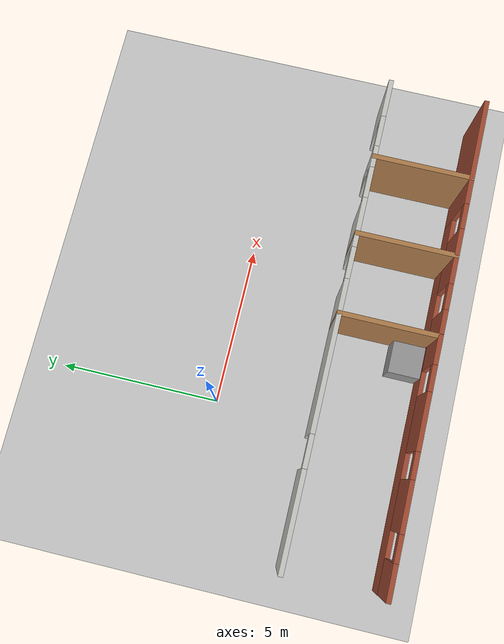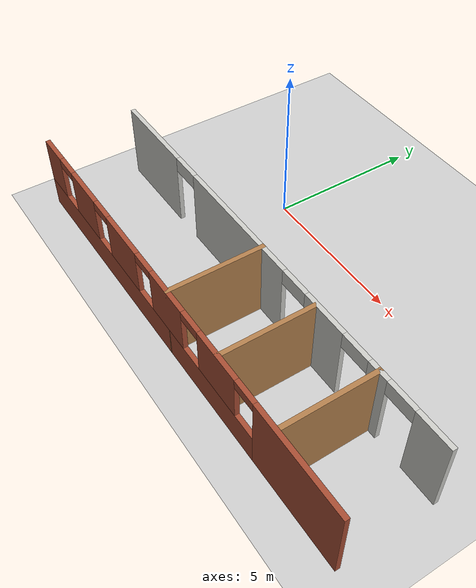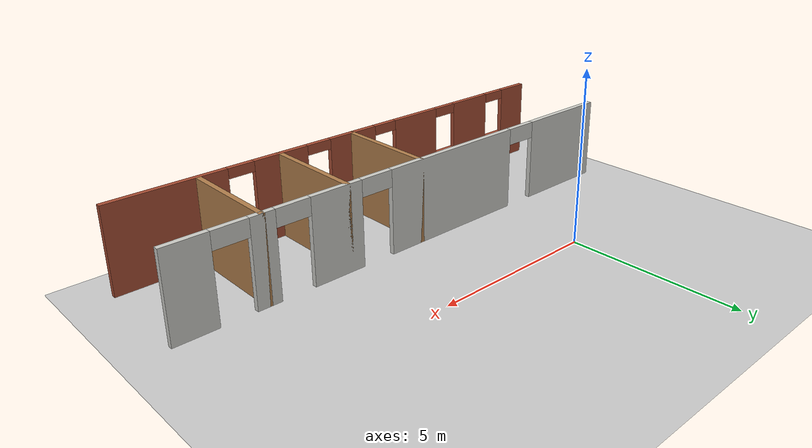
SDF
<sdf version="1.6">
 <world name="default">
  <model name="ground_plane">
   <static>1</static>
   <link name="link">
    <collision name="collision">
     <geometry><plane><normal>0 0 1</normal><size>100 100</size></plane></geometry>
     <surface><friction><ode><mu>100</mu><mu2>50</mu2></ode></friction></surface>
    </collision>
    <visual name="visual">
     <cast_shadows>0</cast_shadows>
     <geometry><plane><normal>0 0 1</normal><size>100 100</size></plane></geometry>
     <material>
      <script><uri>file://media/materials/scripts/gazebo.material</uri><name>Gazebo/Grey</name></script>
     </material>
    </visual>
   </link>
  </model>
  <model name="building">
   <link name="Wall_11">
    <pose>5 -3 0 0 0 -1.5708</pose>
    <visual name="Wall_11_Visual">
     <pose>0 0 1.25 0 -0 0</pose>
     <geometry><box><size>3.15 0.15 2.5</size></box></geometry>
     <material>
      <script><uri>file://media/materials/scripts/gazebo.material</uri><name>Gazebo/Wood</name></script>
      <ambient>0.435294 0.796078 0.67451 1</ambient>
      <shader type="pixel"/>
      <diffuse>1 1 1 1</diffuse>
      <specular>0.2 0.2 0.2 1</specular>
      <emissive>0 0 0 1</emissive>
     </material>
     <meta><layer>0</layer></meta>
    </visual>
    <collision name="Wall_11_Collision">
     <pose>0 0 1.25 0 -0 0</pose>
     <geometry><box><size>3.15 0.15 2.5</size></box></geometry>
     <surface>
      <friction>
       <ode><mu>1</mu><mu2>1</mu2><fdir1>0 0 0</fdir1><slip1>0</slip1><slip2>0</slip2></ode>
       <torsional>
        <coefficient>1</coefficient>
        <patch_radius>0</patch_radius>
        <surface_radius>0</surface_radius>
        <use_patch_radius>1</use_patch_radius>
        <ode><slip>0</slip></ode>
       </torsional>
      </friction>
      <bounce><restitution_coefficient>0</restitution_coefficient><threshold>1e+06</threshold></bounce>
      <contact>
       <collide_without_contact>0</collide_without_contact>
       <collide_without_contact_bitmask>1</collide_without_contact_bitmask>
       <collide_bitmask>1</collide_bitmask>
       <ode>
        <soft_cfm>0</soft_cfm>
        <soft_erp>0.2</soft_erp>
        <kp>1e+13</kp>
        <kd>1</kd>
        <max_vel>0.01</max_vel>
        <min_depth>0</min_depth>
       </ode>
       <bullet>
        <split_impulse>1</split_impulse>
        <split_impulse_penetration_threshold>-0.01</split_impulse_penetration_threshold>
        <soft_cfm>0</soft_cfm>
        <soft_erp>0.2</soft_erp>
        <kp>1e+13</kp>
        <kd>1</kd>
       </bullet>
      </contact>
     </surface>
    </collision>
   </link>
   <link name="Wall_13">
    <pose>2.5 -3 0 0 0 -1.5708</pose>
    <visual name="Wall_13_Visual">
     <pose>0 0 1.25 0 -0 0</pose>
     <geometry><box><size>3.15 0.15 2.5</size></box></geometry>
     <material>
      <script><uri>file://media/materials/scripts/gazebo.material</uri><name>Gazebo/Wood</name></script>
      <ambient>0.435294 0.796078 0.67451 1</ambient>
      <shader type="pixel"/>
      <diffuse>1 1 1 1</diffuse>
      <specular>0.2 0.2 0.2 1</specular>
      <emissive>0 0 0 1</emissive>
     </material>
     <meta><layer>0</layer></meta>
    </visual>
    <collision name="Wall_13_Collision">
     <pose>0 0 1.25 0 -0 0</pose>
     <geometry><box><size>3.15 0.15 2.5</size></box></geometry>
     <surface>
      <friction>
       <ode><mu>1</mu><mu2>1</mu2><fdir1>0 0 0</fdir1><slip1>0</slip1><slip2>0</slip2></ode>
       <torsional>
        <coefficient>1</coefficient>
        <patch_radius>0</patch_radius>
        <surface_radius>0</surface_radius>
        <use_patch_radius>1</use_patch_radius>
        <ode><slip>0</slip></ode>
       </torsional>
      </friction>
      <bounce><restitution_coefficient>0</restitution_coefficient><threshold>1e+06</threshold></bounce>
      <contact>
       <collide_without_contact>0</collide_without_contact>
       <collide_without_contact_bitmask>1</collide_without_contact_bitmask>
       <collide_bitmask>1</collide_bitmask>
       <ode>
        <soft_cfm>0</soft_cfm>
        <soft_erp>0.2</soft_erp>
        <kp>1e+13</kp>
        <kd>1</kd>
        <max_vel>0.01</max_vel>
        <min_depth>0</min_depth>
       </ode>
       <bullet>
        <split_impulse>1</split_impulse>
        <split_impulse_penetration_threshold>-0.01</split_impulse_penetration_threshold>
        <soft_cfm>0</soft_cfm>
        <soft_erp>0.2</soft_erp>
        <kp>1e+13</kp>
        <kd>1</kd>
       </bullet>
      </contact>
     </surface>
    </collision>
   </link>
   <link name="Wall_15">
    <pose>0 -3 0 0 0 -1.5708</pose>
    <visual name="Wall_15_Visual">
     <pose>0 0 1.25 0 -0 0</pose>
     <geometry><box><size>3.15 0.15 2.5</size></box></geometry>
     <material>
      <script><uri>file://media/materials/scripts/gazebo.material</uri><name>Gazebo/Wood</name></script>
      <ambient>0.435294 0.796078 0.67451 1</ambient>
      <shader type="pixel"/>
      <diffuse>1 1 1 1</diffuse>
      <specular>0.2 0.2 0.2 1</specular>
      <emissive>0 0 0 1</emissive>
     </material>
     <meta><layer>0</layer></meta>
    </visual>
    <collision name="Wall_15_Collision">
     <pose>0 0 1.25 0 -0 0</pose>
     <geometry><box><size>3.15 0.15 2.5</size></box></geometry>
     <surface>
      <friction>
       <ode><mu>1</mu><mu2>1</mu2><fdir1>0 0 0</fdir1><slip1>0</slip1><slip2>0</slip2></ode>
       <torsional>
        <coefficient>1</coefficient>
        <patch_radius>0</patch_radius>
        <surface_radius>0</surface_radius>
        <use_patch_radius>1</use_patch_radius>
        <ode><slip>0</slip></ode>
       </torsional>
      </friction>
      <bounce><restitution_coefficient>0</restitution_coefficient><threshold>1e+06</threshold></bounce>
      <contact>
       <collide_without_contact>0</collide_without_contact>
       <collide_without_contact_bitmask>1</collide_without_contact_bitmask>
       <collide_bitmask>1</collide_bitmask>
       <ode>
        <soft_cfm>0</soft_cfm>
        <soft_erp>0.2</soft_erp>
        <kp>1e+13</kp>
        <kd>1</kd>
        <max_vel>0.01</max_vel>
        <min_depth>0</min_depth>
       </ode>
       <bullet>
        <split_impulse>1</split_impulse>
        <split_impulse_penetration_threshold>-0.01</split_impulse_penetration_threshold>
        <soft_cfm>0</soft_cfm>
        <soft_erp>0.2</soft_erp>
        <kp>1e+13</kp>
        <kd>1</kd>
       </bullet>
      </contact>
     </surface>
    </collision>
   </link>
   <link name="Wall_4">
    <pose>0 -4.5 0 0 -0 3.14159</pose>
    <visual name="Wall_4_Visual_5">
     <pose>4.94464 0 1.75 0 -0 0</pose>
     <geometry><box><size>1.521 0.15 1.5</size></box></geometry>
     <material>
      <script><uri>file://media/materials/scripts/gazebo.material</uri><name>Gazebo/Bricks</name></script>
      <ambient>0.996078 0.47451 0.0196078 1</ambient>
      <shader type="pixel"/>
      <diffuse>1 1 1 1</diffuse>
      <specular>0.2 0.2 0.2 1</specular>
      <emissive>0 0 0 1</emissive>
     </material>
     <meta><layer>0</layer></meta>
    </visual>
    <visual name="Wall_4_Visual_6">
     <pose>7.04007 0 1.75 0 -0 0</pose>
     <geometry><box><size>1.06986 0.15 1.5</size></box></geometry>
     <material>
      <script><uri>file://media/materials/scripts/gazebo.material</uri><name>Gazebo/Bricks</name></script>
      <ambient>0.996078 0.47451 0.0196078 1</ambient>
      <shader type="pixel"/>
      <diffuse>1 1 1 1</diffuse>
      <specular>0.2 0.2 0.2 1</specular>
      <emissive>0 0 0 1</emissive>
     </material>
     <meta><layer>0</layer></meta>
    </visual>
    <visual name="Wall_4_Visual_7">
     <pose>-3.75095 0 2.35 0 -0 0</pose>
     <geometry><box><size>0.8 0.15 0.3</size></box></geometry>
     <material>
      <script><uri>file://media/materials/scripts/gazebo.material</uri><name>Gazebo/Bricks</name></script>
      <ambient>0.996078 0.47451 0.0196078 1</ambient>
      <shader type="pixel"/>
      <diffuse>1 1 1 1</diffuse>
      <specular>0.2 0.2 0.2 1</specular>
      <emissive>0 0 0 1</emissive>
     </material>
     <meta><layer>0</layer></meta>
    </visual>
    <visual name="Wall_4_Visual_8">
     <pose>-1.21746 0 2.35 0 -0 0</pose>
     <geometry><box><size>0.8 0.15 0.3</size></box></geometry>
     <material>
      <script><uri>file://media/materials/scripts/gazebo.material</uri><name>Gazebo/Bricks</name></script>
      <ambient>0.996078 0.47451 0.0196078 1</ambient>
      <shader type="pixel"/>
      <diffuse>1 1 1 1</diffuse>
      <specular>0.2 0.2 0.2 1</specular>
      <emissive>0 0 0 1</emissive>
     </material>
     <meta><layer>0</layer></meta>
    </visual>
    <visual name="Wall_4_Visual_9">
     <pose>1.25065 0 2.35 0 -0 0</pose>
     <geometry><box><size>0.8 0.15 0.3</size></box></geometry>
     <material>
      <script><uri>file://media/materials/scripts/gazebo.material</uri><name>Gazebo/Bricks</name></script>
      <ambient>0.996078 0.47451 0.0196078 1</ambient>
      <shader type="pixel"/>
      <diffuse>1 1 1 1</diffuse>
      <specular>0.2 0.2 0.2 1</specular>
      <emissive>0 0 0 1</emissive>
     </material>
     <meta><layer>0</layer></meta>
    </visual>
    <visual name="Wall_4_Visual_10">
     <pose>3.78414 0 2.35 0 -0 0</pose>
     <geometry><box><size>0.8 0.15 0.3</size></box></geometry>
     <material>
      <script><uri>file://media/materials/scripts/gazebo.material</uri><name>Gazebo/Bricks</name></script>
      <ambient>0.996078 0.47451 0.0196078 1</ambient>
      <shader type="pixel"/>
      <diffuse>1 1 1 1</diffuse>
      <specular>0.2 0.2 0.2 1</specular>
      <emissive>0 0 0 1</emissive>
     </material>
     <meta><layer>0</layer></meta>
    </visual>
    <visual name="Wall_4_Visual_11">
     <pose>6.10514 0 2.35 0 -0 0</pose>
     <geometry><box><size>0.8 0.15 0.3</size></box></geometry>
     <material>
      <script><uri>file://media/materials/scripts/gazebo.material</uri><name>Gazebo/Bricks</name></script>
      <ambient>0.996078 0.47451 0.0196078 1</ambient>
      <shader type="pixel"/>
      <diffuse>1 1 1 1</diffuse>
      <specular>0.2 0.2 0.2 1</specular>
      <emissive>0 0 0 1</emissive>
     </material>
     <meta><layer>0</layer></meta>
    </visual>
    <visual name="Wall_4_Visual_3">
     <pose>0.016593 0 1.75 0 -0 0</pose>
     <geometry><box><size>1.66811 0.15 1.5</size></box></geometry>
     <material>
      <script><uri>file://media/materials/scripts/gazebo.material</uri><name>Gazebo/Bricks</name></script>
      <ambient>0.996078 0.47451 0.0196078 1</ambient>
      <shader type="pixel"/>
      <diffuse>1 1 1 1</diffuse>
      <specular>0.2 0.2 0.2 1</specular>
      <emissive>0 0 0 1</emissive>
     </material>
     <meta><layer>0</layer></meta>
    </visual>
    <visual name="Wall_4_Visual_2">
     <pose>-2.48421 0 1.75 0 -0 0</pose>
     <geometry><box><size>1.73349 0.15 1.5</size></box></geometry>
     <material>
      <script><uri>file://media/materials/scripts/gazebo.material</uri><name>Gazebo/Bricks</name></script>
      <ambient>0.996078 0.47451 0.0196078 1</ambient>
      <shader type="pixel"/>
      <diffuse>1 1 1 1</diffuse>
      <specular>0.2 0.2 0.2 1</specular>
      <emissive>0 0 0 1</emissive>
     </material>
     <meta><layer>0</layer></meta>
    </visual>
    <visual name="Wall_4_Visual_1">
     <pose>1.71202 0 0.5 0 -0 0</pose>
     <geometry><box><size>11.7259 0.15 1</size></box></geometry>
     <material>
      <script><uri>file://media/materials/scripts/gazebo.material</uri><name>Gazebo/Bricks</name></script>
      <ambient>0.996078 0.47451 0.0196078 1</ambient>
      <shader type="pixel"/>
      <diffuse>1 1 1 1</diffuse>
      <specular>0.2 0.2 0.2 1</specular>
      <emissive>0 0 0 1</emissive>
     </material>
     <meta><layer>0</layer></meta>
    </visual>
    <visual name="Wall_4_Visual_0">
     <pose>-5.86297 0 1.25 0 -0 0</pose>
     <geometry><box><size>3.42405 0.15 2.5</size></box></geometry>
     <material>
      <script><uri>file://media/materials/scripts/gazebo.material</uri><name>Gazebo/Bricks</name></script>
      <ambient>0.996078 0.47451 0.0196078 1</ambient>
      <shader type="pixel"/>
      <diffuse>1 1 1 1</diffuse>
      <specular>0.2 0.2 0.2 1</specular>
      <emissive>0 0 0 1</emissive>
     </material>
     <meta><layer>0</layer></meta>
    </visual>
    <visual name="Wall_4_Visual_4">
     <pose>2.51739 0 1.75 0 -0 0</pose>
     <geometry><box><size>1.73349 0.15 1.5</size></box></geometry>
     <material>
      <script><uri>file://media/materials/scripts/gazebo.material</uri><name>Gazebo/Bricks</name></script>
      <ambient>0.996078 0.47451 0.0196078 1</ambient>
      <shader type="pixel"/>
      <diffuse>1 1 1 1</diffuse>
      <specular>0.2 0.2 0.2 1</specular>
      <emissive>0 0 0 1</emissive>
     </material>
     <meta><layer>0</layer></meta>
    </visual>
    <collision name="Wall_4_Collision_3">
     <pose>0.016593 0 1.75 0 -0 0</pose>
     <geometry><box><size>1.66811 0.15 1.5</size></box></geometry>
     <surface>
      <friction>
       <ode><mu>1</mu><mu2>1</mu2><fdir1>0 0 0</fdir1><slip1>0</slip1><slip2>0</slip2></ode>
       <torsional>
        <coefficient>1</coefficient>
        <patch_radius>0</patch_radius>
        <surface_radius>0</surface_radius>
        <use_patch_radius>1</use_patch_radius>
        <ode><slip>0</slip></ode>
       </torsional>
      </friction>
      <bounce><restitution_coefficient>0</restitution_coefficient><threshold>1e+06</threshold></bounce>
      <contact>
       <collide_without_contact>0</collide_without_contact>
       <collide_without_contact_bitmask>1</collide_without_contact_bitmask>
       <collide_bitmask>1</collide_bitmask>
       <ode>
        <soft_cfm>0</soft_cfm>
        <soft_erp>0.2</soft_erp>
        <kp>1e+13</kp>
        <kd>1</kd>
        <max_vel>0.01</max_vel>
        <min_depth>0</min_depth>
       </ode>
       <bullet>
        <split_impulse>1</split_impulse>
        <split_impulse_penetration_threshold>-0.01</split_impulse_penetration_threshold>
        <soft_cfm>0</soft_cfm>
        <soft_erp>0.2</soft_erp>
        <kp>1e+13</kp>
        <kd>1</kd>
       </bullet>
      </contact>
     </surface>
    </collision>
    <collision name="Wall_4_Collision_4">
     <pose>2.51739 0 1.75 0 -0 0</pose>
     <geometry><box><size>1.73349 0.15 1.5</size></box></geometry>
     <surface>
      <friction>
       <ode><mu>1</mu><mu2>1</mu2><fdir1>0 0 0</fdir1><slip1>0</slip1><slip2>0</slip2></ode>
       <torsional>
        <coefficient>1</coefficient>
        <patch_radius>0</patch_radius>
        <surface_radius>0</surface_radius>
        <use_patch_radius>1</use_patch_radius>
        <ode><slip>0</slip></ode>
       </torsional>
      </friction>
      <bounce><restitution_coefficient>0</restitution_coefficient><threshold>1e+06</threshold></bounce>
      <contact>
       <collide_without_contact>0</collide_without_contact>
       <collide_without_contact_bitmask>1</collide_without_contact_bitmask>
       <collide_bitmask>1</collide_bitmask>
       <ode>
        <soft_cfm>0</soft_cfm>
        <soft_erp>0.2</soft_erp>
        <kp>1e+13</kp>
        <kd>1</kd>
        <max_vel>0.01</max_vel>
        <min_depth>0</min_depth>
       </ode>
       <bullet>
        <split_impulse>1</split_impulse>
        <split_impulse_penetration_threshold>-0.01</split_impulse_penetration_threshold>
        <soft_cfm>0</soft_cfm>
        <soft_erp>0.2</soft_erp>
        <kp>1e+13</kp>
        <kd>1</kd>
       </bullet>
      </contact>
     </surface>
    </collision>
    <collision name="Wall_4_Collision_6">
     <pose>7.04007 0 1.75 0 -0 0</pose>
     <geometry><box><size>1.06986 0.15 1.5</size></box></geometry>
     <surface>
      <friction>
       <ode><mu>1</mu><mu2>1</mu2><fdir1>0 0 0</fdir1><slip1>0</slip1><slip2>0</slip2></ode>
       <torsional>
        <coefficient>1</coefficient>
        <patch_radius>0</patch_radius>
        <surface_radius>0</surface_radius>
        <use_patch_radius>1</use_patch_radius>
        <ode><slip>0</slip></ode>
       </torsional>
      </friction>
      <bounce><restitution_coefficient>0</restitution_coefficient><threshold>1e+06</threshold></bounce>
      <contact>
       <collide_without_contact>0</collide_without_contact>
       <collide_without_contact_bitmask>1</collide_without_contact_bitmask>
       <collide_bitmask>1</collide_bitmask>
       <ode>
        <soft_cfm>0</soft_cfm>
        <soft_erp>0.2</soft_erp>
        <kp>1e+13</kp>
        <kd>1</kd>
        <max_vel>0.01</max_vel>
        <min_depth>0</min_depth>
       </ode>
       <bullet>
        <split_impulse>1</split_impulse>
        <split_impulse_penetration_threshold>-0.01</split_impulse_penetration_threshold>
        <soft_cfm>0</soft_cfm>
        <soft_erp>0.2</soft_erp>
        <kp>1e+13</kp>
        <kd>1</kd>
       </bullet>
      </contact>
     </surface>
    </collision>
    <collision name="Wall_4_Collision_7">
     <pose>-3.75095 0 2.35 0 -0 0</pose>
     <geometry><box><size>0.8 0.15 0.3</size></box></geometry>
     <surface>
      <friction>
       <ode><mu>1</mu><mu2>1</mu2><fdir1>0 0 0</fdir1><slip1>0</slip1><slip2>0</slip2></ode>
       <torsional>
        <coefficient>1</coefficient>
        <patch_radius>0</patch_radius>
        <surface_radius>0</surface_radius>
        <use_patch_radius>1</use_patch_radius>
        <ode><slip>0</slip></ode>
       </torsional>
      </friction>
      <bounce><restitution_coefficient>0</restitution_coefficient><threshold>1e+06</threshold></bounce>
      <contact>
       <collide_without_contact>0</collide_without_contact>
       <collide_without_contact_bitmask>1</collide_without_contact_bitmask>
       <collide_bitmask>1</collide_bitmask>
       <ode>
        <soft_cfm>0</soft_cfm>
        <soft_erp>0.2</soft_erp>
        <kp>1e+13</kp>
        <kd>1</kd>
        <max_vel>0.01</max_vel>
        <min_depth>0</min_depth>
       </ode>
       <bullet>
        <split_impulse>1</split_impulse>
        <split_impulse_penetration_threshold>-0.01</split_impulse_penetration_threshold>
        <soft_cfm>0</soft_cfm>
        <soft_erp>0.2</soft_erp>
        <kp>1e+13</kp>
        <kd>1</kd>
       </bullet>
      </contact>
     </surface>
    </collision>
    <collision name="Wall_4_Collision_5">
     <pose>4.94464 0 1.75 0 -0 0</pose>
     <geometry><box><size>1.521 0.15 1.5</size></box></geometry>
     <surface>
      <friction>
       <ode><mu>1</mu><mu2>1</mu2><fdir1>0 0 0</fdir1><slip1>0</slip1><slip2>0</slip2></ode>
       <torsional>
        <coefficient>1</coefficient>
        <patch_radius>0</patch_radius>
        <surface_radius>0</surface_radius>
        <use_patch_radius>1</use_patch_radius>
        <ode><slip>0</slip></ode>
       </torsional>
      </friction>
      <bounce><restitution_coefficient>0</restitution_coefficient><threshold>1e+06</threshold></bounce>
      <contact>
       <collide_without_contact>0</collide_without_contact>
       <collide_without_contact_bitmask>1</collide_without_contact_bitmask>
       <collide_bitmask>1</collide_bitmask>
       <ode>
        <soft_cfm>0</soft_cfm>
        <soft_erp>0.2</soft_erp>
        <kp>1e+13</kp>
        <kd>1</kd>
        <max_vel>0.01</max_vel>
        <min_depth>0</min_depth>
       </ode>
       <bullet>
        <split_impulse>1</split_impulse>
        <split_impulse_penetration_threshold>-0.01</split_impulse_penetration_threshold>
        <soft_cfm>0</soft_cfm>
        <soft_erp>0.2</soft_erp>
        <kp>1e+13</kp>
        <kd>1</kd>
       </bullet>
      </contact>
     </surface>
    </collision>
    <collision name="Wall_4_Collision_8">
     <pose>-1.21746 0 2.35 0 -0 0</pose>
     <geometry><box><size>0.8 0.15 0.3</size></box></geometry>
     <surface>
      <friction>
       <ode><mu>1</mu><mu2>1</mu2><fdir1>0 0 0</fdir1><slip1>0</slip1><slip2>0</slip2></ode>
       <torsional>
        <coefficient>1</coefficient>
        <patch_radius>0</patch_radius>
        <surface_radius>0</surface_radius>
        <use_patch_radius>1</use_patch_radius>
        <ode><slip>0</slip></ode>
       </torsional>
      </friction>
      <bounce><restitution_coefficient>0</restitution_coefficient><threshold>1e+06</threshold></bounce>
      <contact>
       <collide_without_contact>0</collide_without_contact>
       <collide_without_contact_bitmask>1</collide_without_contact_bitmask>
       <collide_bitmask>1</collide_bitmask>
       <ode>
        <soft_cfm>0</soft_cfm>
        <soft_erp>0.2</soft_erp>
        <kp>1e+13</kp>
        <kd>1</kd>
        <max_vel>0.01</max_vel>
        <min_depth>0</min_depth>
       </ode>
       <bullet>
        <split_impulse>1</split_impulse>
        <split_impulse_penetration_threshold>-0.01</split_impulse_penetration_threshold>
        <soft_cfm>0</soft_cfm>
        <soft_erp>0.2</soft_erp>
        <kp>1e+13</kp>
        <kd>1</kd>
       </bullet>
      </contact>
     </surface>
    </collision>
    <collision name="Wall_4_Collision_10">
     <pose>3.78414 0 2.35 0 -0 0</pose>
     <geometry><box><size>0.8 0.15 0.3</size></box></geometry>
     <surface>
      <friction>
       <ode><mu>1</mu><mu2>1</mu2><fdir1>0 0 0</fdir1><slip1>0</slip1><slip2>0</slip2></ode>
       <torsional>
        <coefficient>1</coefficient>
        <patch_radius>0</patch_radius>
        <surface_radius>0</surface_radius>
        <use_patch_radius>1</use_patch_radius>
        <ode><slip>0</slip></ode>
       </torsional>
      </friction>
      <bounce><restitution_coefficient>0</restitution_coefficient><threshold>1e+06</threshold></bounce>
      <contact>
       <collide_without_contact>0</collide_without_contact>
       <collide_without_contact_bitmask>1</collide_without_contact_bitmask>
       <collide_bitmask>1</collide_bitmask>
       <ode>
        <soft_cfm>0</soft_cfm>
        <soft_erp>0.2</soft_erp>
        <kp>1e+13</kp>
        <kd>1</kd>
        <max_vel>0.01</max_vel>
        <min_depth>0</min_depth>
       </ode>
       <bullet>
        <split_impulse>1</split_impulse>
        <split_impulse_penetration_threshold>-0.01</split_impulse_penetration_threshold>
        <soft_cfm>0</soft_cfm>
        <soft_erp>0.2</soft_erp>
        <kp>1e+13</kp>
        <kd>1</kd>
       </bullet>
      </contact>
     </surface>
    </collision>
    <collision name="Wall_4_Collision_9">
     <pose>1.25065 0 2.35 0 -0 0</pose>
     <geometry><box><size>0.8 0.15 0.3</size></box></geometry>
     <surface>
      <friction>
       <ode><mu>1</mu><mu2>1</mu2><fdir1>0 0 0</fdir1><slip1>0</slip1><slip2>0</slip2></ode>
       <torsional>
        <coefficient>1</coefficient>
        <patch_radius>0</patch_radius>
        <surface_radius>0</surface_radius>
        <use_patch_radius>1</use_patch_radius>
        <ode><slip>0</slip></ode>
       </torsional>
      </friction>
      <bounce><restitution_coefficient>0</restitution_coefficient><threshold>1e+06</threshold></bounce>
      <contact>
       <collide_without_contact>0</collide_without_contact>
       <collide_without_contact_bitmask>1</collide_without_contact_bitmask>
       <collide_bitmask>1</collide_bitmask>
       <ode>
        <soft_cfm>0</soft_cfm>
        <soft_erp>0.2</soft_erp>
        <kp>1e+13</kp>
        <kd>1</kd>
        <max_vel>0.01</max_vel>
        <min_depth>0</min_depth>
       </ode>
       <bullet>
        <split_impulse>1</split_impulse>
        <split_impulse_penetration_threshold>-0.01</split_impulse_penetration_threshold>
        <soft_cfm>0</soft_cfm>
        <soft_erp>0.2</soft_erp>
        <kp>1e+13</kp>
        <kd>1</kd>
       </bullet>
      </contact>
     </surface>
    </collision>
    <collision name="Wall_4_Collision_11">
     <pose>6.10514 0 2.35 0 -0 0</pose>
     <geometry><box><size>0.8 0.15 0.3</size></box></geometry>
     <surface>
      <friction>
       <ode><mu>1</mu><mu2>1</mu2><fdir1>0 0 0</fdir1><slip1>0</slip1><slip2>0</slip2></ode>
       <torsional>
        <coefficient>1</coefficient>
        <patch_radius>0</patch_radius>
        <surface_radius>0</surface_radius>
        <use_patch_radius>1</use_patch_radius>
        <ode><slip>0</slip></ode>
       </torsional>
      </friction>
      <bounce><restitution_coefficient>0</restitution_coefficient><threshold>1e+06</threshold></bounce>
      <contact>
       <collide_without_contact>0</collide_without_contact>
       <collide_without_contact_bitmask>1</collide_without_contact_bitmask>
       <collide_bitmask>1</collide_bitmask>
       <ode>
        <soft_cfm>0</soft_cfm>
        <soft_erp>0.2</soft_erp>
        <kp>1e+13</kp>
        <kd>1</kd>
        <max_vel>0.01</max_vel>
        <min_depth>0</min_depth>
       </ode>
       <bullet>
        <split_impulse>1</split_impulse>
        <split_impulse_penetration_threshold>-0.01</split_impulse_penetration_threshold>
        <soft_cfm>0</soft_cfm>
        <soft_erp>0.2</soft_erp>
        <kp>1e+13</kp>
        <kd>1</kd>
       </bullet>
      </contact>
     </surface>
    </collision>
    <collision name="Wall_4_Collision_0">
     <pose>-5.86297 0 1.25 0 -0 0</pose>
     <geometry><box><size>3.42405 0.15 2.5</size></box></geometry>
     <surface>
      <friction>
       <ode><mu>1</mu><mu2>1</mu2><fdir1>0 0 0</fdir1><slip1>0</slip1><slip2>0</slip2></ode>
       <torsional>
        <coefficient>1</coefficient>
        <patch_radius>0</patch_radius>
        <surface_radius>0</surface_radius>
        <use_patch_radius>1</use_patch_radius>
        <ode><slip>0</slip></ode>
       </torsional>
      </friction>
      <bounce><restitution_coefficient>0</restitution_coefficient><threshold>1e+06</threshold></bounce>
      <contact>
       <collide_without_contact>0</collide_without_contact>
       <collide_without_contact_bitmask>1</collide_without_contact_bitmask>
       <collide_bitmask>1</collide_bitmask>
       <ode>
        <soft_cfm>0</soft_cfm>
        <soft_erp>0.2</soft_erp>
        <kp>1e+13</kp>
        <kd>1</kd>
        <max_vel>0.01</max_vel>
        <min_depth>0</min_depth>
       </ode>
       <bullet>
        <split_impulse>1</split_impulse>
        <split_impulse_penetration_threshold>-0.01</split_impulse_penetration_threshold>
        <soft_cfm>0</soft_cfm>
        <soft_erp>0.2</soft_erp>
        <kp>1e+13</kp>
        <kd>1</kd>
       </bullet>
      </contact>
     </surface>
    </collision>
    <collision name="Wall_4_Collision_1">
     <pose>1.71202 0 0.5 0 -0 0</pose>
     <geometry><box><size>11.7259 0.15 1</size></box></geometry>
     <surface>
      <friction>
       <ode><mu>1</mu><mu2>1</mu2><fdir1>0 0 0</fdir1><slip1>0</slip1><slip2>0</slip2></ode>
       <torsional>
        <coefficient>1</coefficient>
        <patch_radius>0</patch_radius>
        <surface_radius>0</surface_radius>
        <use_patch_radius>1</use_patch_radius>
        <ode><slip>0</slip></ode>
       </torsional>
      </friction>
      <bounce><restitution_coefficient>0</restitution_coefficient><threshold>1e+06</threshold></bounce>
      <contact>
       <collide_without_contact>0</collide_without_contact>
       <collide_without_contact_bitmask>1</collide_without_contact_bitmask>
       <collide_bitmask>1</collide_bitmask>
       <ode>
        <soft_cfm>0</soft_cfm>
        <soft_erp>0.2</soft_erp>
        <kp>1e+13</kp>
        <kd>1</kd>
        <max_vel>0.01</max_vel>
        <min_depth>0</min_depth>
       </ode>
       <bullet>
        <split_impulse>1</split_impulse>
        <split_impulse_penetration_threshold>-0.01</split_impulse_penetration_threshold>
        <soft_cfm>0</soft_cfm>
        <soft_erp>0.2</soft_erp>
        <kp>1e+13</kp>
        <kd>1</kd>
       </bullet>
      </contact>
     </surface>
    </collision>
    <collision name="Wall_4_Collision_2">
     <pose>-2.48421 0 1.75 0 -0 0</pose>
     <geometry><box><size>1.73349 0.15 1.5</size></box></geometry>
     <surface>
      <friction>
       <ode><mu>1</mu><mu2>1</mu2><fdir1>0 0 0</fdir1><slip1>0</slip1><slip2>0</slip2></ode>
       <torsional>
        <coefficient>1</coefficient>
        <patch_radius>0</patch_radius>
        <surface_radius>0</surface_radius>
        <use_patch_radius>1</use_patch_radius>
        <ode><slip>0</slip></ode>
       </torsional>
      </friction>
      <bounce><restitution_coefficient>0</restitution_coefficient><threshold>1e+06</threshold></bounce>
      <contact>
       <collide_without_contact>0</collide_without_contact>
       <collide_without_contact_bitmask>1</collide_without_contact_bitmask>
       <collide_bitmask>1</collide_bitmask>
       <ode>
        <soft_cfm>0</soft_cfm>
        <soft_erp>0.2</soft_erp>
        <kp>1e+13</kp>
        <kd>1</kd>
        <max_vel>0.01</max_vel>
        <min_depth>0</min_depth>
       </ode>
       <bullet>
        <split_impulse>1</split_impulse>
        <split_impulse_penetration_threshold>-0.01</split_impulse_penetration_threshold>
        <soft_cfm>0</soft_cfm>
        <soft_erp>0.2</soft_erp>
        <kp>1e+13</kp>
        <kd>1</kd>
       </bullet>
      </contact>
     </surface>
    </collision>
   </link>
   <link name="Wall_9">
    <pose>0 -1.5 0 0 -0 0</pose>
    <visual name="Wall_9_Visual_0">
     <pose>-6.08485 0 1.25 0 -0 0</pose>
     <geometry><box><size>2.98031 0.15 2.5</size></box></geometry>
     <material>
      <script><uri>file://media/materials/scripts/gazebo.material</uri><name>Gazebo/CeilingTiled</name></script>
      <ambient>1 0.764706 0.305882 1</ambient>
      <shader type="pixel"/>
      <diffuse>1 1 1 1</diffuse>
      <specular>0 0 0 1</specular>
      <emissive>0 0 0 1</emissive>
     </material>
     <meta><layer>0</layer></meta>
    </visual>
    <visual name="Wall_9_Visual_2">
     <pose>2.85197 0 1.25 0 -0 0</pose>
     <geometry><box><size>1.58252 0.15 2.5</size></box></geometry>
     <material>
      <script><uri>file://media/materials/scripts/gazebo.material</uri><name>Gazebo/CeilingTiled</name></script>
      <ambient>1 0.764706 0.305882 1</ambient>
      <shader type="pixel"/>
      <diffuse>1 1 1 1</diffuse>
      <specular>0 0 0 1</specular>
      <emissive>0 0 0 1</emissive>
     </material>
     <meta><layer>0</layer></meta>
    </visual>
    <visual name="Wall_9_Visual_1">
     <pose>-1.26699 0 1.25 0 -0 0</pose>
     <geometry><box><size>4.6554 0.15 2.5</size></box></geometry>
     <material>
      <script><uri>file://media/materials/scripts/gazebo.material</uri><name>Gazebo/CeilingTiled</name></script>
      <ambient>1 0.764706 0.305882 1</ambient>
      <shader type="pixel"/>
      <diffuse>1 1 1 1</diffuse>
      <specular>0 0 0 1</specular>
      <emissive>0 0 0 1</emissive>
     </material>
     <meta><layer>0</layer></meta>
    </visual>
    <visual name="Wall_9_Visual_3">
     <pose>4.99318 0 1.25 0 -0 0</pose>
     <geometry><box><size>0.699889 0.15 2.5</size></box></geometry>
     <material>
      <script><uri>file://media/materials/scripts/gazebo.material</uri><name>Gazebo/CeilingTiled</name></script>
      <ambient>1 0.764706 0.305882 1</ambient>
      <shader type="pixel"/>
      <diffuse>1 1 1 1</diffuse>
      <specular>0 0 0 1</specular>
      <emissive>0 0 0 1</emissive>
     </material>
     <meta><layer>0</layer></meta>
    </visual>
    <visual name="Wall_9_Visual_4">
     <pose>6.95906 0 1.25 0 -0 0</pose>
     <geometry><box><size>1.23188 0.15 2.5</size></box></geometry>
     <material>
      <script><uri>file://media/materials/scripts/gazebo.material</uri><name>Gazebo/CeilingTiled</name></script>
      <ambient>1 0.764706 0.305882 1</ambient>
      <shader type="pixel"/>
      <diffuse>1 1 1 1</diffuse>
      <specular>0 0 0 1</specular>
      <emissive>0 0 0 1</emissive>
     </material>
     <meta><layer>0</layer></meta>
    </visual>
    <visual name="Wall_9_Visual_5">
     <pose>-4.09469 0 2.25 0 -0 0</pose>
     <geometry><box><size>1 0.15 0.5</size></box></geometry>
     <material>
      <script><uri>file://media/materials/scripts/gazebo.material</uri><name>Gazebo/CeilingTiled</name></script>
      <ambient>1 0.764706 0.305882 1</ambient>
      <shader type="pixel"/>
      <diffuse>1 1 1 1</diffuse>
      <specular>0 0 0 1</specular>
      <emissive>0 0 0 1</emissive>
     </material>
     <meta><layer>0</layer></meta>
    </visual>
    <visual name="Wall_9_Visual_6">
     <pose>1.56071 0 2.25 0 -0 0</pose>
     <geometry><box><size>1 0.15 0.5</size></box></geometry>
     <material>
      <script><uri>file://media/materials/scripts/gazebo.material</uri><name>Gazebo/CeilingTiled</name></script>
      <ambient>1 0.764706 0.305882 1</ambient>
      <shader type="pixel"/>
      <diffuse>1 1 1 1</diffuse>
      <specular>0 0 0 1</specular>
      <emissive>0 0 0 1</emissive>
     </material>
     <meta><layer>0</layer></meta>
    </visual>
    <visual name="Wall_9_Visual_7">
     <pose>4.14323 0 2.25 0 -0 0</pose>
     <geometry><box><size>1 0.15 0.5</size></box></geometry>
     <material>
      <script><uri>file://media/materials/scripts/gazebo.material</uri><name>Gazebo/CeilingTiled</name></script>
      <ambient>1 0.764706 0.305882 1</ambient>
      <shader type="pixel"/>
      <diffuse>1 1 1 1</diffuse>
      <specular>0 0 0 1</specular>
      <emissive>0 0 0 1</emissive>
     </material>
     <meta><layer>0</layer></meta>
    </visual>
    <visual name="Wall_9_Visual_8">
     <pose>5.84312 0 2.25 0 -0 0</pose>
     <geometry><box><size>1 0.15 0.5</size></box></geometry>
     <material>
      <script><uri>file://media/materials/scripts/gazebo.material</uri><name>Gazebo/CeilingTiled</name></script>
      <ambient>1 0.764706 0.305882 1</ambient>
      <shader type="pixel"/>
      <diffuse>1 1 1 1</diffuse>
      <specular>0 0 0 1</specular>
      <emissive>0 0 0 1</emissive>
     </material>
     <meta><layer>0</layer></meta>
    </visual>
    <collision name="Wall_9_Collision_4">
     <pose>6.95906 0 1.25 0 -0 0</pose>
     <geometry><box><size>1.23188 0.15 2.5</size></box></geometry>
     <surface>
      <friction>
       <ode><mu>1</mu><mu2>1</mu2><fdir1>0 0 0</fdir1><slip1>0</slip1><slip2>0</slip2></ode>
       <torsional>
        <coefficient>1</coefficient>
        <patch_radius>0</patch_radius>
        <surface_radius>0</surface_radius>
        <use_patch_radius>1</use_patch_radius>
        <ode><slip>0</slip></ode>
       </torsional>
      </friction>
      <bounce><restitution_coefficient>0</restitution_coefficient><threshold>1e+06</threshold></bounce>
      <contact>
       <collide_without_contact>0</collide_without_contact>
       <collide_without_contact_bitmask>1</collide_without_contact_bitmask>
       <collide_bitmask>1</collide_bitmask>
       <ode>
        <soft_cfm>0</soft_cfm>
        <soft_erp>0.2</soft_erp>
        <kp>1e+13</kp>
        <kd>1</kd>
        <max_vel>0.01</max_vel>
        <min_depth>0</min_depth>
       </ode>
       <bullet>
        <split_impulse>1</split_impulse>
        <split_impulse_penetration_threshold>-0.01</split_impulse_penetration_threshold>
        <soft_cfm>0</soft_cfm>
        <soft_erp>0.2</soft_erp>
        <kp>1e+13</kp>
        <kd>1</kd>
       </bullet>
      </contact>
     </surface>
    </collision>
    <collision name="Wall_9_Collision_1">
     <pose>-1.26699 0 1.25 0 -0 0</pose>
     <geometry><box><size>4.6554 0.15 2.5</size></box></geometry>
     <surface>
      <friction>
       <ode><mu>1</mu><mu2>1</mu2><fdir1>0 0 0</fdir1><slip1>0</slip1><slip2>0</slip2></ode>
       <torsional>
        <coefficient>1</coefficient>
        <patch_radius>0</patch_radius>
        <surface_radius>0</surface_radius>
        <use_patch_radius>1</use_patch_radius>
        <ode><slip>0</slip></ode>
       </torsional>
      </friction>
      <bounce><restitution_coefficient>0</restitution_coefficient><threshold>1e+06</threshold></bounce>
      <contact>
       <collide_without_contact>0</collide_without_contact>
       <collide_without_contact_bitmask>1</collide_without_contact_bitmask>
       <collide_bitmask>1</collide_bitmask>
       <ode>
        <soft_cfm>0</soft_cfm>
        <soft_erp>0.2</soft_erp>
        <kp>1e+13</kp>
        <kd>1</kd>
        <max_vel>0.01</max_vel>
        <min_depth>0</min_depth>
       </ode>
       <bullet>
        <split_impulse>1</split_impulse>
        <split_impulse_penetration_threshold>-0.01</split_impulse_penetration_threshold>
        <soft_cfm>0</soft_cfm>
        <soft_erp>0.2</soft_erp>
        <kp>1e+13</kp>
        <kd>1</kd>
       </bullet>
      </contact>
     </surface>
    </collision>
    <collision name="Wall_9_Collision_0">
     <pose>-6.08485 0 1.25 0 -0 0</pose>
     <geometry><box><size>2.98031 0.15 2.5</size></box></geometry>
     <surface>
      <friction>
       <ode><mu>1</mu><mu2>1</mu2><fdir1>0 0 0</fdir1><slip1>0</slip1><slip2>0</slip2></ode>
       <torsional>
        <coefficient>1</coefficient>
        <patch_radius>0</patch_radius>
        <surface_radius>0</surface_radius>
        <use_patch_radius>1</use_patch_radius>
        <ode><slip>0</slip></ode>
       </torsional>
      </friction>
      <bounce><restitution_coefficient>0</restitution_coefficient><threshold>1e+06</threshold></bounce>
      <contact>
       <collide_without_contact>0</collide_without_contact>
       <collide_without_contact_bitmask>1</collide_without_contact_bitmask>
       <collide_bitmask>1</collide_bitmask>
       <ode>
        <soft_cfm>0</soft_cfm>
        <soft_erp>0.2</soft_erp>
        <kp>1e+13</kp>
        <kd>1</kd>
        <max_vel>0.01</max_vel>
        <min_depth>0</min_depth>
       </ode>
       <bullet>
        <split_impulse>1</split_impulse>
        <split_impulse_penetration_threshold>-0.01</split_impulse_penetration_threshold>
        <soft_cfm>0</soft_cfm>
        <soft_erp>0.2</soft_erp>
        <kp>1e+13</kp>
        <kd>1</kd>
       </bullet>
      </contact>
     </surface>
    </collision>
    <collision name="Wall_9_Collision_3">
     <pose>4.99318 0 1.25 0 -0 0</pose>
     <geometry><box><size>0.699889 0.15 2.5</size></box></geometry>
     <surface>
      <friction>
       <ode><mu>1</mu><mu2>1</mu2><fdir1>0 0 0</fdir1><slip1>0</slip1><slip2>0</slip2></ode>
       <torsional>
        <coefficient>1</coefficient>
        <patch_radius>0</patch_radius>
        <surface_radius>0</surface_radius>
        <use_patch_radius>1</use_patch_radius>
        <ode><slip>0</slip></ode>
       </torsional>
      </friction>
      <bounce><restitution_coefficient>0</restitution_coefficient><threshold>1e+06</threshold></bounce>
      <contact>
       <collide_without_contact>0</collide_without_contact>
       <collide_without_contact_bitmask>1</collide_without_contact_bitmask>
       <collide_bitmask>1</collide_bitmask>
       <ode>
        <soft_cfm>0</soft_cfm>
        <soft_erp>0.2</soft_erp>
        <kp>1e+13</kp>
        <kd>1</kd>
        <max_vel>0.01</max_vel>
        <min_depth>0</min_depth>
       </ode>
       <bullet>
        <split_impulse>1</split_impulse>
        <split_impulse_penetration_threshold>-0.01</split_impulse_penetration_threshold>
        <soft_cfm>0</soft_cfm>
        <soft_erp>0.2</soft_erp>
        <kp>1e+13</kp>
        <kd>1</kd>
       </bullet>
      </contact>
     </surface>
    </collision>
    <collision name="Wall_9_Collision_2">
     <pose>2.85197 0 1.25 0 -0 0</pose>
     <geometry><box><size>1.58252 0.15 2.5</size></box></geometry>
     <surface>
      <friction>
       <ode><mu>1</mu><mu2>1</mu2><fdir1>0 0 0</fdir1><slip1>0</slip1><slip2>0</slip2></ode>
       <torsional>
        <coefficient>1</coefficient>
        <patch_radius>0</patch_radius>
        <surface_radius>0</surface_radius>
        <use_patch_radius>1</use_patch_radius>
        <ode><slip>0</slip></ode>
       </torsional>
      </friction>
      <bounce><restitution_coefficient>0</restitution_coefficient><threshold>1e+06</threshold></bounce>
      <contact>
       <collide_without_contact>0</collide_without_contact>
       <collide_without_contact_bitmask>1</collide_without_contact_bitmask>
       <collide_bitmask>1</collide_bitmask>
       <ode>
        <soft_cfm>0</soft_cfm>
        <soft_erp>0.2</soft_erp>
        <kp>1e+13</kp>
        <kd>1</kd>
        <max_vel>0.01</max_vel>
        <min_depth>0</min_depth>
       </ode>
       <bullet>
        <split_impulse>1</split_impulse>
        <split_impulse_penetration_threshold>-0.01</split_impulse_penetration_threshold>
        <soft_cfm>0</soft_cfm>
        <soft_erp>0.2</soft_erp>
        <kp>1e+13</kp>
        <kd>1</kd>
       </bullet>
      </contact>
     </surface>
    </collision>
    <collision name="Wall_9_Collision_6">
     <pose>1.56071 0 2.25 0 -0 0</pose>
     <geometry><box><size>1 0.15 0.5</size></box></geometry>
     <surface>
      <friction>
       <ode><mu>1</mu><mu2>1</mu2><fdir1>0 0 0</fdir1><slip1>0</slip1><slip2>0</slip2></ode>
       <torsional>
        <coefficient>1</coefficient>
        <patch_radius>0</patch_radius>
        <surface_radius>0</surface_radius>
        <use_patch_radius>1</use_patch_radius>
        <ode><slip>0</slip></ode>
       </torsional>
      </friction>
      <bounce><restitution_coefficient>0</restitution_coefficient><threshold>1e+06</threshold></bounce>
      <contact>
       <collide_without_contact>0</collide_without_contact>
       <collide_without_contact_bitmask>1</collide_without_contact_bitmask>
       <collide_bitmask>1</collide_bitmask>
       <ode>
        <soft_cfm>0</soft_cfm>
        <soft_erp>0.2</soft_erp>
        <kp>1e+13</kp>
        <kd>1</kd>
        <max_vel>0.01</max_vel>
        <min_depth>0</min_depth>
       </ode>
       <bullet>
        <split_impulse>1</split_impulse>
        <split_impulse_penetration_threshold>-0.01</split_impulse_penetration_threshold>
        <soft_cfm>0</soft_cfm>
        <soft_erp>0.2</soft_erp>
        <kp>1e+13</kp>
        <kd>1</kd>
       </bullet>
      </contact>
     </surface>
    </collision>
    <collision name="Wall_9_Collision_5">
     <pose>-4.09469 0 2.25 0 -0 0</pose>
     <geometry><box><size>1 0.15 0.5</size></box></geometry>
     <surface>
      <friction>
       <ode><mu>1</mu><mu2>1</mu2><fdir1>0 0 0</fdir1><slip1>0</slip1><slip2>0</slip2></ode>
       <torsional>
        <coefficient>1</coefficient>
        <patch_radius>0</patch_radius>
        <surface_radius>0</surface_radius>
        <use_patch_radius>1</use_patch_radius>
        <ode><slip>0</slip></ode>
       </torsional>
      </friction>
      <bounce><restitution_coefficient>0</restitution_coefficient><threshold>1e+06</threshold></bounce>
      <contact>
       <collide_without_contact>0</collide_without_contact>
       <collide_without_contact_bitmask>1</collide_without_contact_bitmask>
       <collide_bitmask>1</collide_bitmask>
       <ode>
        <soft_cfm>0</soft_cfm>
        <soft_erp>0.2</soft_erp>
        <kp>1e+13</kp>
        <kd>1</kd>
        <max_vel>0.01</max_vel>
        <min_depth>0</min_depth>
       </ode>
       <bullet>
        <split_impulse>1</split_impulse>
        <split_impulse_penetration_threshold>-0.01</split_impulse_penetration_threshold>
        <soft_cfm>0</soft_cfm>
        <soft_erp>0.2</soft_erp>
        <kp>1e+13</kp>
        <kd>1</kd>
       </bullet>
      </contact>
     </surface>
    </collision>
    <collision name="Wall_9_Collision_8">
     <pose>5.84312 0 2.25 0 -0 0</pose>
     <geometry><box><size>1 0.15 0.5</size></box></geometry>
     <surface>
      <friction>
       <ode><mu>1</mu><mu2>1</mu2><fdir1>0 0 0</fdir1><slip1>0</slip1><slip2>0</slip2></ode>
       <torsional>
        <coefficient>1</coefficient>
        <patch_radius>0</patch_radius>
        <surface_radius>0</surface_radius>
        <use_patch_radius>1</use_patch_radius>
        <ode><slip>0</slip></ode>
       </torsional>
      </friction>
      <bounce><restitution_coefficient>0</restitution_coefficient><threshold>1e+06</threshold></bounce>
      <contact>
       <collide_without_contact>0</collide_without_contact>
       <collide_without_contact_bitmask>1</collide_without_contact_bitmask>
       <collide_bitmask>1</collide_bitmask>
       <ode>
        <soft_cfm>0</soft_cfm>
        <soft_erp>0.2</soft_erp>
        <kp>1e+13</kp>
        <kd>1</kd>
        <max_vel>0.01</max_vel>
        <min_depth>0</min_depth>
       </ode>
       <bullet>
        <split_impulse>1</split_impulse>
        <split_impulse_penetration_threshold>-0.01</split_impulse_penetration_threshold>
        <soft_cfm>0</soft_cfm>
        <soft_erp>0.2</soft_erp>
        <kp>1e+13</kp>
        <kd>1</kd>
       </bullet>
      </contact>
     </surface>
    </collision>
    <collision name="Wall_9_Collision_7">
     <pose>4.14323 0 2.25 0 -0 0</pose>
     <geometry><box><size>1 0.15 0.5</size></box></geometry>
     <surface>
      <friction>
       <ode><mu>1</mu><mu2>1</mu2><fdir1>0 0 0</fdir1><slip1>0</slip1><slip2>0</slip2></ode>
       <torsional>
        <coefficient>1</coefficient>
        <patch_radius>0</patch_radius>
        <surface_radius>0</surface_radius>
        <use_patch_radius>1</use_patch_radius>
        <ode><slip>0</slip></ode>
       </torsional>
      </friction>
      <bounce><restitution_coefficient>0</restitution_coefficient><threshold>1e+06</threshold></bounce>
      <contact>
       <collide_without_contact>0</collide_without_contact>
       <collide_without_contact_bitmask>1</collide_without_contact_bitmask>
       <collide_bitmask>1</collide_bitmask>
       <ode>
        <soft_cfm>0</soft_cfm>
        <soft_erp>0.2</soft_erp>
        <kp>1e+13</kp>
        <kd>1</kd>
        <max_vel>0.01</max_vel>
        <min_depth>0</min_depth>
       </ode>
       <bullet>
        <split_impulse>1</split_impulse>
        <split_impulse_penetration_threshold>-0.01</split_impulse_penetration_threshold>
        <soft_cfm>0</soft_cfm>
        <soft_erp>0.2</soft_erp>
        <kp>1e+13</kp>
        <kd>1</kd>
       </bullet>
      </contact>
     </surface>
    </collision>
   </link>
   <static>1</static>
   <pose>3.1187 -1.5263 0 0 -0 0</pose>
  </model>
  <model name="unit_box_2">
   <link name="link">
    <pose>0.132581 -0.183594 -0 0 -0 0</pose>
    <inertial>
     <mass>1</mass>
     <inertia>
      <ixx>0.166667</ixx>
      <ixy>0</ixy>
      <ixz>0</ixz>
      <iyy>0.166667</iyy>
      <iyz>0</iyz>
      <izz>0.166667</izz>
     </inertia>
    </inertial>
    <visual name="visual">
     <geometry><box><size>1 1 1</size></box></geometry>
     <material>
      <script><name>Gazebo/Grey</name><uri>file://media/materials/scripts/gazebo.material</uri></script>
      <shader type="pixel"/>
      <ambient>0.3 0.3 0.3 1</ambient>
      <diffuse>0.7 0.7 0.7 1</diffuse>
      <specular>0.01 0.01 0.01 1</specular>
      <emissive>0 0 0 1</emissive>
     </material>
    </visual>
    <collision name="collision">
     <geometry><box><size>1 1 1</size></box></geometry>
     <surface>
      <friction>
       <ode><mu>1</mu><mu2>1</mu2><fdir1>0 0 0</fdir1><slip1>0</slip1><slip2>0</slip2></ode>
       <torsional>
        <coefficient>1</coefficient>
        <patch_radius>0</patch_radius>
        <surface_radius>0</surface_radius>
        <use_patch_radius>1</use_patch_radius>
        <ode><slip>0</slip></ode>
       </torsional>
      </friction>
      <bounce><restitution_coefficient>0</restitution_coefficient><threshold>1e+06</threshold></bounce>
      <contact>
       <collide_without_contact>0</collide_without_contact>
       <collide_without_contact_bitmask>1</collide_without_contact_bitmask>
       <collide_bitmask>1</collide_bitmask>
       <ode>
        <soft_cfm>0</soft_cfm>
        <soft_erp>0.2</soft_erp>
        <kp>1e+13</kp>
        <kd>1</kd>
        <max_vel>0.01</max_vel>
        <min_depth>0</min_depth>
       </ode>
       <bullet>
        <split_impulse>1</split_impulse>
        <split_impulse_penetration_threshold>-0.01</split_impulse_penetration_threshold>
        <soft_cfm>0</soft_cfm>
        <soft_erp>0.2</soft_erp>
        <kp>1e+13</kp>
        <kd>1</kd>
       </bullet>
      </contact>
     </surface>
    </collision>
   </link>
   <static>0</static>
   <pose>2.3789 -5.25067 0.499994 0 -1e-05 0</pose>
  </model>
 </world>
</sdf>
